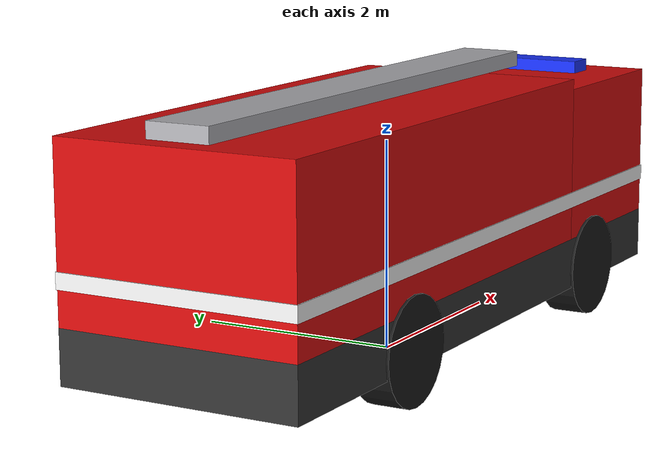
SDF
<?xml version="1.0" ?>
<sdf version="1.9">
  <model name="adair_firetruck">
    <link name="base_link">
      <pose relative_to="__model__">0 0 0.5 0 0 0</pose>
      <inertial>
        <pose>0 0 0.6 0 0 0</pose>
        <mass>9500.0</mass>
        <inertia>
          <ixx>7355</ixx><ixy>0</ixy><ixz>0</ixz>
          <iyy>41958</iyy><iyz>0</iyz>
          <izz>42980</izz>
        </inertia>
      </inertial>
      <visual name="chassis_visual">
        <pose>0 0 0.1 0 0 0</pose>
        <geometry><box><size>7.0 2.3 0.5</size></box></geometry>
        <material><diffuse>0.2 0.2 0.2 1</diffuse></material>
      </visual>
      <visual name="cab_visual">
        <pose>2.6 0 1.1 0 0 0</pose>
        <geometry><box><size>1.8 2.3 1.5</size></box></geometry>
        <material><diffuse>0.85 0.05 0.05 1</diffuse><specular>0.4 0.4 0.4 1</specular></material>
      </visual>
      <visual name="windshield_visual">
        <pose>3.51 0 1.35 0 0 0</pose>
        <geometry><box><size>0.02 2.0 0.7</size></box></geometry>
        <material><diffuse>0.2 0.3 0.4 1</diffuse></material>
      </visual>
      <visual name="body_visual">
        <pose>-0.9 0 1.15 0 0 0</pose>
        <geometry><box><size>5.2 2.3 1.6</size></box></geometry>
        <material><diffuse>0.85 0.05 0.05 1</diffuse><specular>0.4 0.4 0.4 1</specular></material>
      </visual>
      <visual name="stripe_visual">
        <pose>0 0 0.75 0 0 0</pose>
        <geometry><box><size>7.02 2.32 0.15</size></box></geometry>
        <material><diffuse>0.95 0.95 0.95 1</diffuse></material>
      </visual>
      <visual name="ladder_visual">
        <pose>-0.6 0 2.05 0 0 0</pose>
        <geometry><box><size>5.6 0.6 0.15</size></box></geometry>
        <material><diffuse>0.7 0.7 0.72 1</diffuse></material>
      </visual>
      <visual name="lightbar_visual">
        <pose>2.9 0 1.92 0 0 0</pose>
        <geometry><box><size>0.3 1.4 0.12</size></box></geometry>
        <material><diffuse>0.1 0.2 1.0 1</diffuse><emissive>0.1 0.2 0.8 1</emissive></material>
      </visual>
      <collision name="body_collision">
        <pose>0 0 0.9 0 0 0</pose>
        <geometry><box><size>7.0 2.3 2.0</size></box></geometry>
      </collision>

      <!-- 센서 (rover_ackermann 과 같은 설정) -->
      <sensor name="air_pressure_sensor" type="air_pressure">
        <always_on>1</always_on>
        <update_rate>50</update_rate>
        <air_pressure>
          <pressure><noise type="gaussian"><mean>0</mean><stddev>3</stddev></noise></pressure>
        </air_pressure>
      </sensor>
      <sensor name="magnetometer_sensor" type="magnetometer">
        <always_on>1</always_on>
        <update_rate>100</update_rate>
        <magnetometer>
          <x><noise type="gaussian"><stddev>0.0001</stddev></noise></x>
          <y><noise type="gaussian"><stddev>0.0001</stddev></noise></y>
          <z><noise type="gaussian"><stddev>0.0001</stddev></noise></z>
        </magnetometer>
      </sensor>
      <sensor name="imu_sensor" type="imu">
        <always_on>1</always_on>
        <update_rate>250</update_rate>
        <imu>
          <angular_velocity>
            <x><noise type="gaussian"><mean>0.0</mean><stddev>0.0008726646</stddev></noise></x>
            <y><noise type="gaussian"><mean>0.0</mean><stddev>0.0008726646</stddev></noise></y>
            <z><noise type="gaussian"><mean>0.0</mean><stddev>0.0008726646</stddev></noise></z>
          </angular_velocity>
          <linear_acceleration>
            <x><noise type="gaussian"><mean>0.0</mean><stddev>0.00637</stddev></noise></x>
            <y><noise type="gaussian"><mean>0.0</mean><stddev>0.00637</stddev></noise></y>
            <z><noise type="gaussian"><mean>0.0</mean><stddev>0.00686</stddev></noise></z>
          </linear_acceleration>
        </imu>
      </sensor>
      <sensor name="navsat_sensor" type="navsat">
        <always_on>1</always_on>
        <update_rate>30</update_rate>
      </sensor>
    </link>

    <!-- 뒷바퀴 -->
    <link name="wheel_rear_left_link">
      <pose relative_to="base_link">-1.6 1.0 0 -1.5707963 0 0</pose>
      <inertial>
        <mass>80.0</mass>
        <inertia><ixx>5.82</ixx><ixy>0</ixy><ixz>0</ixz><iyy>5.82</iyy><iyz>0</iyz><izz>10.0</izz></inertia>
      </inertial>
      <visual name="visual">
        <geometry><cylinder><radius>0.5</radius><length>0.35</length></cylinder></geometry>
        <material><diffuse>0.1 0.1 0.1 1</diffuse></material>
      </visual>
      <collision name="collision">
        <geometry><cylinder><radius>0.5</radius><length>0.35</length></cylinder></geometry>
        <surface><friction><ode><mu>1.0</mu><mu2>1.0</mu2><fdir1>1 0 0</fdir1></ode></friction></surface>
      </collision>
    </link>
    <link name="wheel_rear_right_link">
      <pose relative_to="base_link">-1.6 -1.0 0 -1.5707963 0 0</pose>
      <inertial>
        <mass>80.0</mass>
        <inertia><ixx>5.82</ixx><ixy>0</ixy><ixz>0</ixz><iyy>5.82</iyy><iyz>0</iyz><izz>10.0</izz></inertia>
      </inertial>
      <visual name="visual">
        <geometry><cylinder><radius>0.5</radius><length>0.35</length></cylinder></geometry>
        <material><diffuse>0.1 0.1 0.1 1</diffuse></material>
      </visual>
      <collision name="collision">
        <geometry><cylinder><radius>0.5</radius><length>0.35</length></cylinder></geometry>
        <surface><friction><ode><mu>1.0</mu><mu2>1.0</mu2><fdir1>1 0 0</fdir1></ode></friction></surface>
      </collision>
    </link>

    <!-- 앞바퀴: 조향 링크(차체 기준 z축 회전) → 바퀴 링크(y축 회전) -->
    <link name="wheel_front_left_steering_link">
      <pose relative_to="base_link">2.2 1.0 0 0 0 0</pose>
      <inertial>
        <mass>2.0</mass>
        <inertia><ixx>0.01</ixx><ixy>0</ixy><ixz>0</ixz><iyy>0.01</iyy><iyz>0</iyz><izz>0.01</izz></inertia>
      </inertial>
    </link>
    <link name="wheel_front_right_steering_link">
      <pose relative_to="base_link">2.2 -1.0 0 0 0 0</pose>
      <inertial>
        <mass>2.0</mass>
        <inertia><ixx>0.01</ixx><ixy>0</ixy><ixz>0</ixz><iyy>0.01</iyy><iyz>0</iyz><izz>0.01</izz></inertia>
      </inertial>
    </link>
    <link name="wheel_front_left_link">
      <pose relative_to="base_link">2.2 1.0 0 -1.5707963 0 0</pose>
      <inertial>
        <mass>80.0</mass>
        <inertia><ixx>5.82</ixx><ixy>0</ixy><ixz>0</ixz><iyy>5.82</iyy><iyz>0</iyz><izz>10.0</izz></inertia>
      </inertial>
      <visual name="visual">
        <geometry><cylinder><radius>0.5</radius><length>0.35</length></cylinder></geometry>
        <material><diffuse>0.1 0.1 0.1 1</diffuse></material>
      </visual>
      <collision name="collision">
        <geometry><cylinder><radius>0.5</radius><length>0.35</length></cylinder></geometry>
        <surface><friction><ode><mu>1.0</mu><mu2>1.0</mu2><fdir1>1 0 0</fdir1></ode></friction></surface>
      </collision>
    </link>
    <link name="wheel_front_right_link">
      <pose relative_to="base_link">2.2 -1.0 0 -1.5707963 0 0</pose>
      <inertial>
        <mass>80.0</mass>
        <inertia><ixx>5.82</ixx><ixy>0</ixy><ixz>0</ixz><iyy>5.82</iyy><iyz>0</iyz><izz>10.0</izz></inertia>
      </inertial>
      <visual name="visual">
        <geometry><cylinder><radius>0.5</radius><length>0.35</length></cylinder></geometry>
        <material><diffuse>0.1 0.1 0.1 1</diffuse></material>
      </visual>
      <collision name="collision">
        <geometry><cylinder><radius>0.5</radius><length>0.35</length></cylinder></geometry>
        <surface><friction><ode><mu>1.0</mu><mu2>1.0</mu2><fdir1>1 0 0</fdir1></ode></friction></surface>
      </collision>
    </link>

    <!-- 관절 -->
    <joint name="wheel_rear_left_joint" type="revolute">
      <parent>base_link</parent>
      <child>wheel_rear_left_link</child>
      <axis><xyz expressed_in="__model__">0 1 0</xyz></axis>
    </joint>
    <joint name="wheel_rear_right_joint" type="revolute">
      <parent>base_link</parent>
      <child>wheel_rear_right_link</child>
      <axis><xyz expressed_in="__model__">0 1 0</xyz></axis>
    </joint>
    <joint name="wheel_front_left_steering_joint" type="revolute">
      <parent>base_link</parent>
      <child>wheel_front_left_steering_link</child>
      <axis>
        <xyz expressed_in="__model__">0 0 1</xyz>
        <limit><lower>-0.6109</lower><upper>0.6109</upper><effort>1e6</effort></limit>
      </axis>
    </joint>
    <joint name="wheel_front_right_steering_joint" type="revolute">
      <parent>base_link</parent>
      <child>wheel_front_right_steering_link</child>
      <axis>
        <xyz expressed_in="__model__">0 0 1</xyz>
        <limit><lower>-0.6109</lower><upper>0.6109</upper><effort>1e6</effort></limit>
      </axis>
    </joint>
    <joint name="wheel_front_left_joint" type="revolute">
      <parent>wheel_front_left_steering_link</parent>
      <child>wheel_front_left_link</child>
      <axis><xyz expressed_in="__model__">0 1 0</xyz></axis>
    </joint>
    <joint name="wheel_front_right_joint" type="revolute">
      <parent>wheel_front_right_steering_link</parent>
      <child>wheel_front_right_link</child>
      <axis><xyz expressed_in="__model__">0 1 0</xyz></axis>
    </joint>

    <!-- 바퀴 속도: PX4 가 보내는 actuator 0 (rad/s) 을 네 바퀴에 그대로 -->
    <plugin filename="gz-sim-joint-controller-system" name="gz::sim::systems::JointController">
      <joint_name>wheel_rear_left_joint</joint_name>
      <sub_topic>command/motor_speed</sub_topic>
      <control_type>velocity</control_type>
      <use_actuator_msg>true</use_actuator_msg>
      <actuator_number>0</actuator_number>
    </plugin>
    <plugin filename="gz-sim-joint-controller-system" name="gz::sim::systems::JointController">
      <joint_name>wheel_rear_right_joint</joint_name>
      <sub_topic>command/motor_speed</sub_topic>
      <control_type>velocity</control_type>
      <use_actuator_msg>true</use_actuator_msg>
      <actuator_number>0</actuator_number>
    </plugin>
    <plugin filename="gz-sim-joint-controller-system" name="gz::sim::systems::JointController">
      <joint_name>wheel_front_left_joint</joint_name>
      <sub_topic>command/motor_speed</sub_topic>
      <control_type>velocity</control_type>
      <use_actuator_msg>true</use_actuator_msg>
      <actuator_number>0</actuator_number>
    </plugin>
    <plugin filename="gz-sim-joint-controller-system" name="gz::sim::systems::JointController">
      <joint_name>wheel_front_right_joint</joint_name>
      <sub_topic>command/motor_speed</sub_topic>
      <control_type>velocity</control_type>
      <use_actuator_msg>true</use_actuator_msg>
      <actuator_number>0</actuator_number>
    </plugin>

    <!-- 조향: PX4 servo_0 (rad). 속도 명령 방식이라 바퀴 질량에 관계없이 진동 없이 따라간다. 조향 속도 상한 2 rad/s -->
    <plugin filename="gz-sim-joint-position-controller-system" name="gz::sim::systems::JointPositionController">
      <joint_name>wheel_front_left_steering_joint</joint_name>
      <sub_topic>servo_0</sub_topic>
      <use_velocity_commands>true</use_velocity_commands>
      <p_gain>15</p_gain>
      <i_gain>0</i_gain>
      <d_gain>0</d_gain>
      <cmd_max>2.0</cmd_max>
      <cmd_min>-2.0</cmd_min>
    </plugin>
    <plugin filename="gz-sim-joint-position-controller-system" name="gz::sim::systems::JointPositionController">
      <joint_name>wheel_front_right_steering_joint</joint_name>
      <sub_topic>servo_0</sub_topic>
      <use_velocity_commands>true</use_velocity_commands>
      <p_gain>15</p_gain>
      <i_gain>0</i_gain>
      <d_gain>0</d_gain>
      <cmd_max>2.0</cmd_max>
      <cmd_min>-2.0</cmd_min>
    </plugin>

    <plugin filename="gz-sim-joint-state-publisher-system" name="gz::sim::systems::JointStatePublisher">
      <joint_name>wheel_rear_left_joint</joint_name>
      <joint_name>wheel_rear_right_joint</joint_name>
      <joint_name>wheel_front_left_joint</joint_name>
      <joint_name>wheel_front_right_joint</joint_name>
      <joint_name>wheel_front_left_steering_joint</joint_name>
      <joint_name>wheel_front_right_steering_joint</joint_name>
    </plugin>
  </model>
</sdf>
